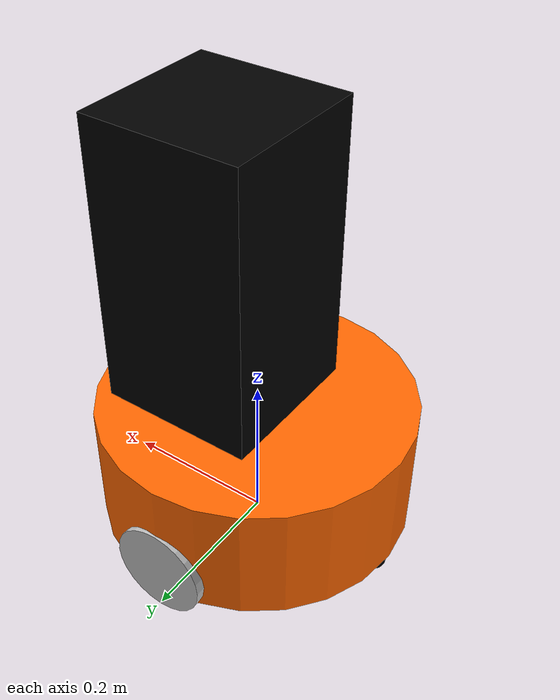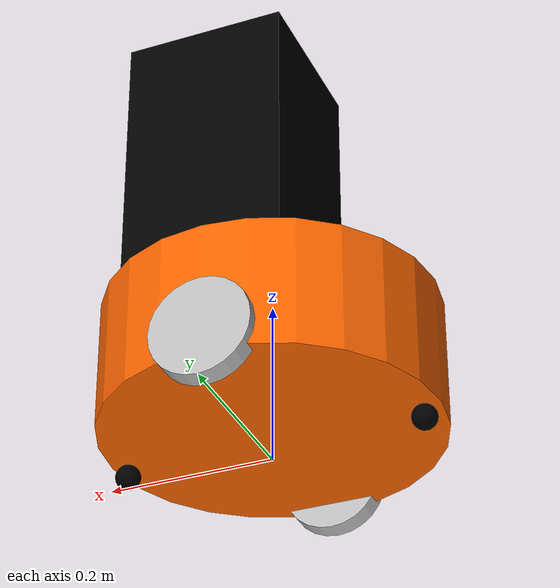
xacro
<?xml version="1.0"?>
<robot name="mbot" xmlns:xacro="http://www.ros.org/wiki/xacro">
    <xacro:include filename="$(find robot_description)/xacro/base/robot_base_gazebo.xacro" />
    <xacro:include filename="$(find robot_description)/xacro/sensors/lidar_gazebo.xacro" />
    <xacro:include filename="$(find robot_description)/xacro/sensors/camera_gazebo.xacro" />
    <xacro:mbot_base_gazebo robot_name=""/>
    <xacro:rplidar prefix="laser"/>
    <xacro:usb_camera prefix="camera"/>

    <xacro:property name="lidar_offset_x" value="0" />
    <xacro:property name="lidar_offset_y" value="0" />
    <xacro:property name="lidar_offset_z" value="0.105" />

    <xacro:property name="camera_offset_x" value="0.2" />
    <xacro:property name="camera_offset_y" value="0" />
    <xacro:property name="camera_offset_z" value="0.04" />

    <!--Lidar-->
    <joint name="lidar_joint" type="fixed">
       <origin xyz="${lidar_offset_x} ${lidar_offset_y} ${lidar_offset_z}" rpy="0 0 0" />
       <parent link="base_link"/>
       <child link="laser_link"/>
    </joint>

    <!-- Camera -->
    <joint name="camera_joint" type="fixed">
        <origin xyz="${camera_offset_x} ${camera_offset_y} ${camera_offset_z}" rpy="0 0 0" />
        <parent link="base_link"/>
        <child link="camera_link"/>
    </joint>

    <!--robot_base/-->

</robot>

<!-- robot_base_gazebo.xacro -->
<robot name="mbot" xmlns:xacro="http://www.ros.org/wiki/xacro">

    <xacro:property name="M_PI" value="3.1415926"/> <!--圆周率π的值，用于计算圆的周长、面积等。-->
    <xacro:property name="base_mass"   value="20" /> <!--机器人底盘的质量。-->
    <xacro:property name="base_radius" value="0.20"/> <!--机器人底盘的半径。-->
    <xacro:property name="base_length" value="0.16"/> <!--机器人底盘的长度。-->

    <xacro:property name="wheel_mass"   value="2"/> <!--机器人轮子的质量。-->
    <xacro:property name="wheel_radius" value="0.06"/> <!--机器人轮子的半径。-->
    <xacro:property name="wheel_length" value="0.025"/> <!--机器人轮子的长度。-->
    <xacro:property name="wheel_joint_y" value="0.19"/> <!--机器人轮子连接处的y坐标。-->
    <xacro:property name="wheel_joint_z" value="0.05"/> <!--机器人轮子连接处的z坐标。-->

    <xacro:property name="caster_mass"    value="0.5" /> <!--机器人万向轮的质量。-->
    <xacro:property name="caster_radius"  value="0.015"/> <!-- wheel_radius - ( base_length/2 - wheel_joint_z) 机器人万向轮的半径。-->
    <xacro:property name="caster_joint_x" value="0.18"/> <!--机器人万向轮连接处的x坐标。-->

    <material name="yellow">
        <color rgba="1 0.4 0 1"/>
    </material>
    <material name="black">
        <color rgba="0 0 0 0.95"/>
    </material>
    <material name="gray">
        <color rgba="0.75 0.75 0.75 1"/>
    </material>

    <xacro:macro name="sphere_inertial_matrix" params="m r">
        <inertial>
            <mass value="${m}" />
            <inertia ixx="${2*m*r*r/5}" ixy="0" ixz="0"
                iyy="${2*m*r*r/5}" iyz="0"
                izz="${2*m*r*r/5}" />
        </inertial>
    </xacro:macro>

    <xacro:macro name="cylinder_inertial_matrix" params="m r h">
        <inertial>
            <mass value="${m}" />
            <inertia ixx="${m*(3*r*r+h*h)/12}" ixy = "0" ixz = "0"
                iyy="${m*(3*r*r+h*h)/12}" iyz = "0"
                izz="${m*r*r/2}" />
        </inertial>
    </xacro:macro>

    <xacro:macro name="wheel" params="prefix reflect">
        <joint name="${prefix}_wheel_joint" type="continuous">
            <origin xyz="0 ${reflect*wheel_joint_y} ${-wheel_joint_z}" rpy="0 0 0"/>
            <parent link="base_link"/>
            <child link="${prefix}_wheel_link"/>
            <axis xyz="0 1 0"/>
        </joint>

        <link name="${prefix}_wheel_link">
            <visual>
                <origin xyz="0 0 0" rpy="${M_PI/2} 0 0" />
                <geometry>
                    <cylinder radius="${wheel_radius}" length = "${wheel_length}"/>
                </geometry>
                <material name="gray" />
            </visual>
            <collision>
                <origin xyz="0 0 0" rpy="${M_PI/2} 0 0" />
                <geometry>
                    <cylinder radius="${wheel_radius}" length = "${wheel_length}"/>
                </geometry>
            </collision>
            <xacro:cylinder_inertial_matrix  m="${wheel_mass}" r="${wheel_radius}" h="${wheel_length}" />
        </link>

        <gazebo reference="${prefix}_wheel_link">
            <material>Gazebo/Gray</material>
        </gazebo>
    </xacro:macro>

    <xacro:macro name="caster" params="prefix reflect">
        <joint name="${prefix}_caster_joint" type="continuous">
            <origin xyz="${reflect*caster_joint_x} 0 ${-(base_length/2 + caster_radius)}" rpy="0 0 0"/>
            <parent link="base_link"/>
            <child link="${prefix}_caster_link"/>
            <axis xyz="0 1 0"/>
        </joint>

        <link name="${prefix}_caster_link">
            <visual>
                <origin xyz="0 0 0" rpy="0 0 0"/>
                <geometry>
                    <sphere radius="${caster_radius}" />
                </geometry>
                <material name="black" />
            </visual>
            <collision>
                <origin xyz="0 0 0" rpy="0 0 0"/>
                <geometry>
                    <sphere radius="${caster_radius}" />
                </geometry>
            </collision>
            <xacro:sphere_inertial_matrix  m="${caster_mass}" r="${caster_radius}" />
        </link>

        <gazebo reference="${prefix}_caster_link">
            <material>Gazebo/Black</material>
        </gazebo>
    </xacro:macro>

    <xacro:macro name="mbot_base_gazebo" params="robot_name">
        <link name="base_footprint">
            <visual>
                <origin xyz="0 0 0" rpy="0 0 0" />
                <geometry>
                    <box size="0.001 0.001 0.001" />
                </geometry>
            </visual>
        </link>
        <gazebo reference="base_footprint">
            <turnGravityOff>false</turnGravityOff>
        </gazebo>

        <joint name="base_footprint_joint" type="fixed">
            <origin xyz="0 0 ${base_length/2 + caster_radius*2}" rpy="0 0 0" />
            <parent link="base_footprint"/>
            <child link="base_link" />
        </joint>

        <link name="base_link">
            <visual>
                <origin xyz=" 0 0 0" rpy="0 0 0" />
                <geometry>
                    <cylinder length="${base_length}" radius="${base_radius}"/>
                </geometry>
                <material name="yellow" /><!--rviz中底盘颜色-->
            </visual>
            <collision>
                <origin xyz=" 0 0 0" rpy="0 0 0" />
                <geometry>
                    <cylinder length="${base_length}" radius="${base_radius}"/>
                </geometry>
            </collision>
            <xacro:cylinder_inertial_matrix  m="${base_mass}" r="${base_radius}" h="${base_length}" />
        </link>

        <gazebo reference="base_link">
            <material>Gazebo/Yellow</material><!--gazebo中底盘颜色-->
        </gazebo>

        <xacro:wheel prefix="left"  reflect="1"/>
        <xacro:wheel prefix="right" reflect="-1"/>

        <xacro:caster prefix="front" reflect="-1"/>
        <xacro:caster prefix="back"  reflect="1"/>

        <gazebo>
            <plugin name="differential_drive_controller"
                    filename="libgazebo_ros_diff_drive.so">
                <rosDebugLevel>Debug</rosDebugLevel>
                <publishWheelTF>false</publishWheelTF>
                <robotNamespace>/</robotNamespace>
                <publishTf>1</publishTf>
                <publishWheelJointState>false</publishWheelJointState>
                <alwaysOn>true</alwaysOn>
                <updateRate>100.0</updateRate>
                <legacyMode>true</legacyMode>
                <leftJoint>left_wheel_joint</leftJoint>
                <rightJoint>right_wheel_joint</rightJoint>
                <wheelSeparation>${wheel_joint_y*2}</wheelSeparation>
                <wheelDiameter>${2*wheel_radius}</wheelDiameter>
                <broadcastTF>true</broadcastTF>
                <wheelTorque>30</wheelTorque>  <!-- 扭矩 -->
                <wheelAcceleration>1.8</wheelAcceleration> <!-- 加速度 -->
                <commandTopic>cmd_vel</commandTopic>
                <odometryFrame>${robot_name}/odom</odometryFrame><!--${robot_name}/odom-->
                <odometryTopic>odom</odometryTopic>
                <robotBaseFrame>${robot_name}/base_footprint</robotBaseFrame>
            </plugin>
        </gazebo>
    </xacro:macro>
</robot>

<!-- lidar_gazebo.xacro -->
<robot xmlns:xacro="http://www.ros.org/wiki/xacro" name="laser">

    <xacro:macro name="rplidar" params="prefix:=laser">
        <!-- Create laser reference frame -->
        <link name="${prefix}_link">
            <inertial>
                <mass value="0.1" />
                <origin xyz="0 0 0" />
                <inertia ixx="0.01" ixy="0.0" ixz="0.0"
                         iyy="0.01" iyz="0.0"
                         izz="0.01" />
            </inertial>

            <visual>
                <origin xyz=" 0 0 0 " rpy="0 0 0" />
                <geometry>
                    <cylinder length="0.05" radius="0.05"/>
                </geometry>
                <material name="black"/>
            </visual>

            <collision>
                <origin xyz="0.0 0.0 0.0" rpy="0 0 0" />
                <geometry>
                    <cylinder length="0.06" radius="0.05"/>
                </geometry>
            </collision>
        </link>

        <gazebo reference="${prefix}_link">
            <material>Gazebo/Black</material>
        </gazebo>

        <gazebo reference="${prefix}_link">
            <sensor type="ray" name="rplidar">
                <pose>0 0 0 0 0 0</pose>
                <visualize>true</visualize><!--开启关闭激光显示-->
		<update_rate>10</update_rate>
                <ray>
                    <scan>
                      <horizontal>
                        <samples>1300</samples><!--每圈产生的激光数量num = samples * resolution数值超过1400会报错-->
                        <resolution>1</resolution>
                        <min_angle>-3.14</min_angle>
                        <max_angle>3.14</max_angle>
                      </horizontal>
                    </scan>
                    <range>
                      <min>0.21</min><!--分别表示激光的长度范围-->
                      <max>30.0</max>
                      <resolution>0.01</resolution>
                    </range>
                    <noise>
                      <type>gaussian</type>
                      <mean>0.0</mean>
                      <stddev>0.01</stddev>
                    </noise>
                </ray>
                <plugin name="gazebo_rplidar" filename="libgazebo_ros_laser.so">
                    <topicName>scan</topicName>
                    <frameName>laser_link</frameName>
                </plugin>
            </sensor>
        </gazebo>

    </xacro:macro>
</robot>

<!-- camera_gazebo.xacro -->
<robot xmlns:xacro="http://www.ros.org/wiki/xacro" name="camera">

    <xacro:macro name="usb_camera" params="prefix:=camera">
        <!-- Create laser reference frame -->
        <link name="${prefix}_link">
            <inertial>
                <mass value="0.1" />
                <origin xyz="0 0 0" />
                <inertia ixx="0.01" ixy="0.0" ixz="0.0"
                         iyy="0.01" iyz="0.0"
                         izz="0.01" />
            </inertial>

            <visual>
                <origin xyz=" -0.15 0 0.16 " rpy="0 0 0" />
                <geometry>
                    <box size="0.2 0.2 0.5" />
                </geometry>
                <material name="black"/>
            </visual>

            <collision>
                <origin xyz="-0.15 0 0.16" rpy="0 0 0" />
                <geometry>
                    <box size="0.2 0.2 0.5" />
                </geometry>
            </collision>
        </link>
        <gazebo reference="${prefix}_link">
            <material>Gazebo/Black</material>
        </gazebo>

        <gazebo reference="${prefix}_link">
            <sensor type="camera" name="camera_node">
                <update_rate>30.0</update_rate>
                <camera name="head">
                    <horizontal_fov>1.3962634</horizontal_fov>
                    <image>
                        <width>1280</width>
                        <height>720</height>
                        <format>R8G8B8</format>
                    </image>
                    <clip>
                        <near>0.02</near>
                        <far>300</far>
                    </clip>
                    <noise>
                        <type>gaussian</type>
                        <mean>0.0</mean>
                        <stddev>0.007</stddev>
                    </noise>
                </camera>
                <plugin name="gazebo_camera" filename="libgazebo_ros_camera.so">
                    <alwaysOn>true</alwaysOn>
                    <updateRate>0.0</updateRate>
                    <cameraName>/camera</cameraName>
                    <imageTopicName>image_raw</imageTopicName>
                    <cameraInfoTopicName>camera_info</cameraInfoTopicName>
                    <frameName>camera_link</frameName>
                    <hackBaseline>0.07</hackBaseline>
                    <distortionK1>0.0</distortionK1>
                    <distortionK2>0.0</distortionK2>
                    <distortionK3>0.0</distortionK3>
                    <distortionT1>0.0</distortionT1>
                    <distortionT2>0.0</distortionT2>
                </plugin>
            </sensor>
        </gazebo>

    </xacro:macro>
</robot>
